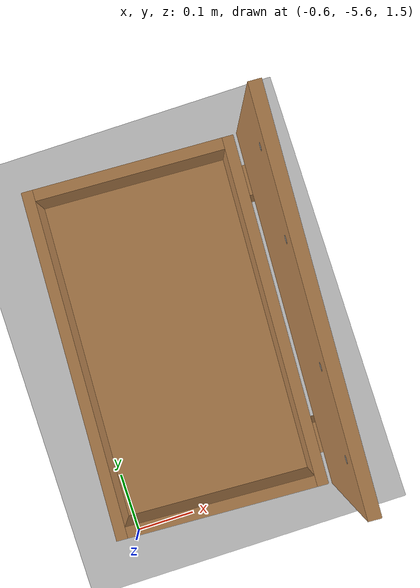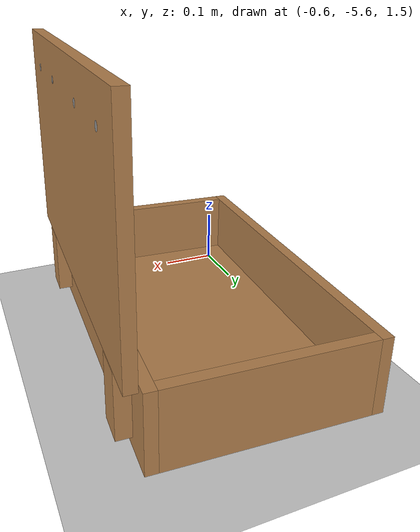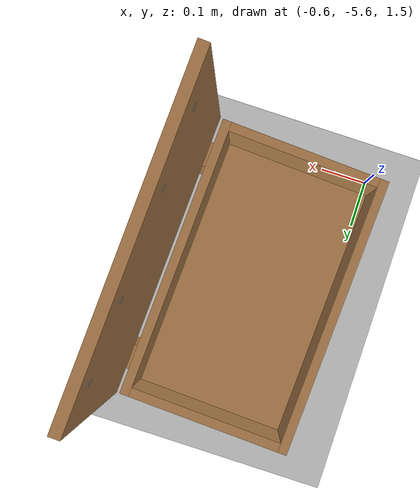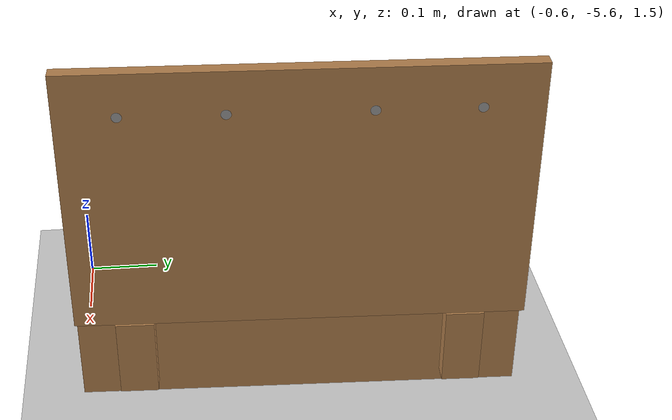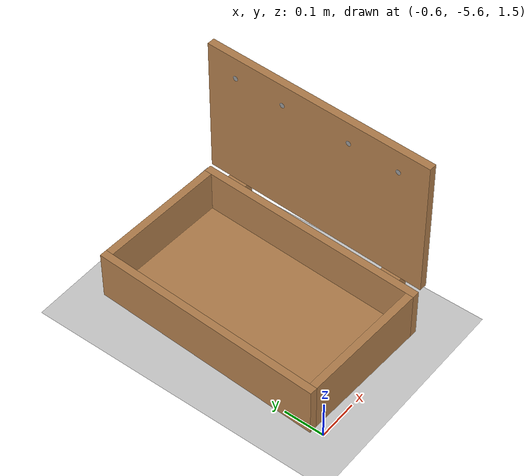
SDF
<sdf version="1.7">
 <world name="default">
  <model name="ground_plane">
   <static>1</static>
   <pose>0 0 1.5059 0 -0 0</pose>
   <link name="link">
    <collision name="collision">
     <pose>0 0 -0.002 0 -0 0</pose>
     <laser_retro>25</laser_retro>
     <geometry><plane><normal>0 0 1</normal><size>100 100</size></plane></geometry>
     <surface><friction><ode><mu>100</mu><mu2>50</mu2></ode></friction></surface>
    </collision>
    <visual name="visual">
     <pose>0 0 -0.003 0 -0 0</pose>
     <cast_shadows>0</cast_shadows>
     <geometry><plane><normal>0 0 1</normal><size>100 100</size></plane></geometry>
     <material>
      <script><uri>file://media/materials/scripts/gazebo.material</uri><name>Gazebo/Grey</name></script>
     </material>
    </visual>
   </link>
  </model>
  <model name="wooden_case_clone">
   <static>1</static>
   <link name="base">
    <pose>0 0 0.024 0 -0 0</pose>
    <inertial>
     <pose>-0.022184 0 0.171592 0 -0 0</pose>
     <mass>3.96264</mass>
     <inertia>
      <ixx>0.213536</ixx>
      <ixy>0</ixy>
      <ixz>0.000779377</ixz>
      <iyy>0.0708943</iyy>
      <iyz>0</iyz>
      <izz>0.154604</izz>
     </inertia>
    </inertial>
    <collision name="collision_back">
     <laser_retro>26</laser_retro>
     <pose>-0.053975 0 0.1778 0 -0 0</pose>
     <geometry><box><size>0.01905 0.5461 0.3175</size></box></geometry>
     <surface>
      <contact>
       <poissons_ratio>0.347</poissons_ratio>
       <elastic_modulus>8.8e+09</elastic_modulus>
       <ode><kp>100000</kp><kd>100</kd><max_vel>100</max_vel><min_depth>0.001</min_depth></ode>
      </contact>
      <friction>
       <torsional>
        <coefficient>1</coefficient>
        <use_patch_radius>0</use_patch_radius>
        <surface_radius>0.01</surface_radius>
       </torsional>
      </friction>
     </surface>
    </collision>
    <visual name="visual_back">
     <pose>-0.053975 0 0.1778 0 -0 0</pose>
     <geometry><box><size>0.01905 0.5461 0.3175</size></box></geometry>
     <material>
      <script><uri>file://media/materials/scripts/gazebo.material</uri><name>Gazebo/Wood</name></script>
     </material>
    </visual>
    <collision name="collision_bottom">
     <laser_retro>26</laser_retro>
     <pose>0 0 0.009525 0 -0 0</pose>
     <geometry><box><size>0.127 0.5842 0.01905</size></box></geometry>
     <surface>
      <contact>
       <poissons_ratio>0.347</poissons_ratio>
       <elastic_modulus>8.8e+09</elastic_modulus>
       <ode><kp>100000</kp><kd>100</kd><max_vel>100</max_vel><min_depth>0.001</min_depth></ode>
      </contact>
      <friction>
       <torsional>
        <coefficient>1</coefficient>
        <use_patch_radius>0</use_patch_radius>
        <surface_radius>0.01</surface_radius>
       </torsional>
      </friction>
     </surface>
    </collision>
    <visual name="visual_bottom">
     <pose>0 0 0.009525 0 -0 0</pose>
     <geometry><box><size>0.127 0.5842 0.01905</size></box></geometry>
     <material>
      <script><uri>file://media/materials/scripts/gazebo.material</uri><name>Gazebo/Wood</name></script>
     </material>
    </visual>
    <collision name="collision_top">
     <laser_retro>26</laser_retro>
     <pose>0 0 0.346075 0 -0 0</pose>
     <geometry><box><size>0.127 0.5842 0.01905</size></box></geometry>
     <surface>
      <contact>
       <poissons_ratio>0.347</poissons_ratio>
       <elastic_modulus>8.8e+09</elastic_modulus>
       <ode><kp>100000</kp><kd>100</kd><max_vel>100</max_vel><min_depth>0.001</min_depth></ode>
      </contact>
      <friction>
       <torsional>
        <coefficient>1</coefficient>
        <use_patch_radius>0</use_patch_radius>
        <surface_radius>0.01</surface_radius>
       </torsional>
      </friction>
     </surface>
    </collision>
    <visual name="visual_top">
     <pose>0 0 0.346075 0 -0 0</pose>
     <geometry><box><size>0.127 0.5842 0.01905</size></box></geometry>
     <material>
      <script><uri>file://media/materials/scripts/gazebo.material</uri><name>Gazebo/Wood</name></script>
     </material>
    </visual>
    <collision name="collision_left">
     <laser_retro>26</laser_retro>
     <pose>0 -0.282575 0.1778 0 -0 0</pose>
     <geometry><box><size>0.127 0.01905 0.3175</size></box></geometry>
     <surface>
      <contact>
       <poissons_ratio>0.347</poissons_ratio>
       <elastic_modulus>8.8e+09</elastic_modulus>
       <ode><kp>100000</kp><kd>100</kd><max_vel>100</max_vel><min_depth>0.001</min_depth></ode>
      </contact>
      <friction>
       <torsional>
        <coefficient>1</coefficient>
        <use_patch_radius>0</use_patch_radius>
        <surface_radius>0.01</surface_radius>
       </torsional>
      </friction>
     </surface>
    </collision>
    <visual name="visual_left">
     <pose>0 -0.282575 0.1778 0 -0 0</pose>
     <geometry><box><size>0.127 0.01905 0.3175</size></box></geometry>
     <material>
      <script><uri>file://media/materials/scripts/gazebo.material</uri><name>Gazebo/Wood</name></script>
     </material>
    </visual>
    <collision name="collision_right">
     <laser_retro>26</laser_retro>
     <pose>0 0.282575 0.1778 0 -0 0</pose>
     <geometry><box><size>0.127 0.01905 0.3175</size></box></geometry>
     <surface>
      <contact>
       <poissons_ratio>0.347</poissons_ratio>
       <elastic_modulus>8.8e+09</elastic_modulus>
       <ode><kp>100000</kp><kd>100</kd><max_vel>100</max_vel><min_depth>0.001</min_depth></ode>
      </contact>
      <friction>
       <torsional>
        <coefficient>1</coefficient>
        <use_patch_radius>0</use_patch_radius>
        <surface_radius>0.01</surface_radius>
       </torsional>
      </friction>
     </surface>
    </collision>
    <visual name="visual_right">
     <pose>0 0.282575 0.1778 0 -0 0</pose>
     <geometry><box><size>0.127 0.01905 0.3175</size></box></geometry>
     <material>
      <script><uri>file://media/materials/scripts/gazebo.material</uri><name>Gazebo/Wood</name></script>
     </material>
    </visual>
    <collision name="collision_block_left">
     <laser_retro>26</laser_retro>
     <pose>0.0095 -0.2151 -0.012 0 -0 0</pose>
     <geometry><box><size>0.108 0.05 0.024</size></box></geometry>
     <surface>
      <contact>
       <poissons_ratio>0.347</poissons_ratio>
       <elastic_modulus>8.8e+09</elastic_modulus>
       <ode><kp>100000</kp><kd>100</kd><max_vel>100</max_vel><min_depth>0.001</min_depth></ode>
      </contact>
      <friction>
       <torsional>
        <coefficient>1</coefficient>
        <use_patch_radius>0</use_patch_radius>
        <surface_radius>0.01</surface_radius>
       </torsional>
      </friction>
     </surface>
    </collision>
    <visual name="visual_block_left">
     <pose>0.0095 -0.2151 -0.012 0 -0 0</pose>
     <geometry><box><size>0.108 0.05 0.024</size></box></geometry>
     <material>
      <script><uri>file://media/materials/scripts/gazebo.material</uri><name>Gazebo/Wood</name></script>
     </material>
    </visual>
    <collision name="collision_block_right">
     <laser_retro>26</laser_retro>
     <pose>0.0095 0.2151 -0.012 0 -0 0</pose>
     <geometry><box><size>0.108 0.05 0.024</size></box></geometry>
     <surface>
      <contact>
       <poissons_ratio>0.347</poissons_ratio>
       <elastic_modulus>8.8e+09</elastic_modulus>
       <ode><kp>100000</kp><kd>100</kd><max_vel>100</max_vel><min_depth>0.001</min_depth></ode>
      </contact>
      <friction>
       <torsional>
        <coefficient>1</coefficient>
        <use_patch_radius>0</use_patch_radius>
        <surface_radius>0.01</surface_radius>
       </torsional>
      </friction>
     </surface>
    </collision>
    <visual name="visual_block_right">
     <pose>0.0095 0.2151 -0.012 0 -0 0</pose>
     <geometry><box><size>0.108 0.05 0.024</size></box></geometry>
     <material>
      <script><uri>file://media/materials/scripts/gazebo.material</uri><name>Gazebo/Wood</name></script>
     </material>
    </visual>
   </link>
   <link name="lid">
    <pose>0.243775 0 0.009525 0 -0 0</pose>
    <inertial>
     <mass>1.97874</mass>
     <inertia>
      <ixx>0.0563367</ixx>
      <ixy>0</ixy>
      <ixz>0</ixz>
      <iyy>0.020911</iyy>
      <iyz>0</iyz>
      <izz>0.0771281</izz>
     </inertia>
    </inertial>
    <collision name="collision">
     <laser_retro>26</laser_retro>
     <geometry><box><size>0.3556 0.5842 0.01905</size></box></geometry>
     <surface>
      <contact>
       <poissons_ratio>0.347</poissons_ratio>
       <elastic_modulus>8.8e+09</elastic_modulus>
       <ode><kp>100000</kp><kd>100</kd><max_vel>100</max_vel><min_depth>0.001</min_depth></ode>
      </contact>
      <friction>
       <torsional>
        <coefficient>1</coefficient>
        <use_patch_radius>0</use_patch_radius>
        <surface_radius>0.01</surface_radius>
       </torsional>
      </friction>
     </surface>
    </collision>
    <visual name="visual">
     <geometry><box><size>0.3556 0.5842 0.01905</size></box></geometry>
     <material>
      <script><uri>file://media/materials/scripts/gazebo.material</uri><name>Gazebo/Wood</name></script>
     </material>
    </visual>
    <visual name="tee_nut_1">
     <pose>0.122 -0.216 0 0 -0 0</pose>
     <geometry><cylinder><radius>0.00635</radius><length>0.0192405</length></cylinder></geometry>
     <material>
      <script><uri>file://media/materials/scripts/gazebo.material</uri><name>Gazebo/Grey</name></script>
     </material>
    </visual>
    <visual name="tee_nut_2">
     <pose>0.122 -0.088 0 0 -0 0</pose>
     <geometry><cylinder><radius>0.00635</radius><length>0.0192405</length></cylinder></geometry>
     <material>
      <script><uri>file://media/materials/scripts/gazebo.material</uri><name>Gazebo/Grey</name></script>
     </material>
    </visual>
    <visual name="tee_nut_3">
     <pose>0.122 0.088 0 0 -0 0</pose>
     <geometry><cylinder><radius>0.00635</radius><length>0.0192405</length></cylinder></geometry>
     <material>
      <script><uri>file://media/materials/scripts/gazebo.material</uri><name>Gazebo/Grey</name></script>
     </material>
    </visual>
    <visual name="tee_nut_4">
     <pose>0.122 0.216 0 0 -0 0</pose>
     <geometry><cylinder><radius>0.00635</radius><length>0.0192405</length></cylinder></geometry>
     <material>
      <script><uri>file://media/materials/scripts/gazebo.material</uri><name>Gazebo/Grey</name></script>
     </material>
    </visual>
   </link>
   <joint name="lid_hinge" type="revolute">
    <pose>-0.1778 0 0.01905 0 -0 0</pose>
    <parent>base</parent>
    <child>lid</child>
    <axis>
     <xyz>0 1 0</xyz>
     <limit><upper>0.523599</upper><lower>-1.5708</lower></limit>
     <dynamics><spring_reference>0</spring_reference><spring_stiffness>0</spring_stiffness></dynamics>
    </axis>
   </joint>
   <pose>-0.23337 -5.30979 1.59 2.96336 -1.55928 -3.00931</pose>
  </model>
 </world>
</sdf>
